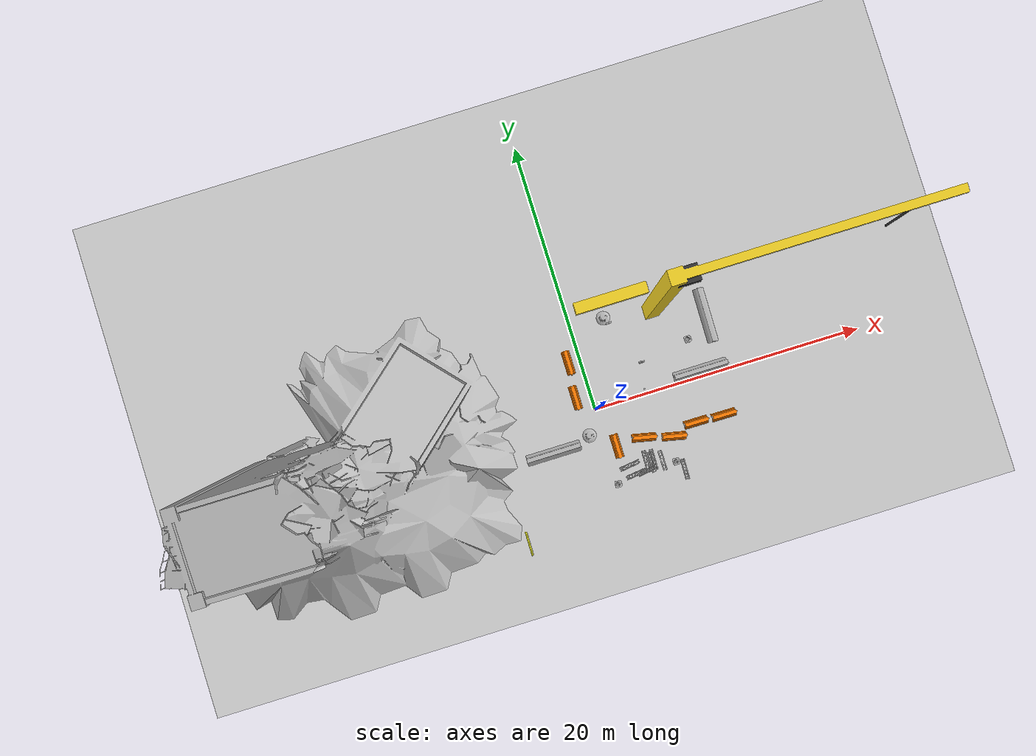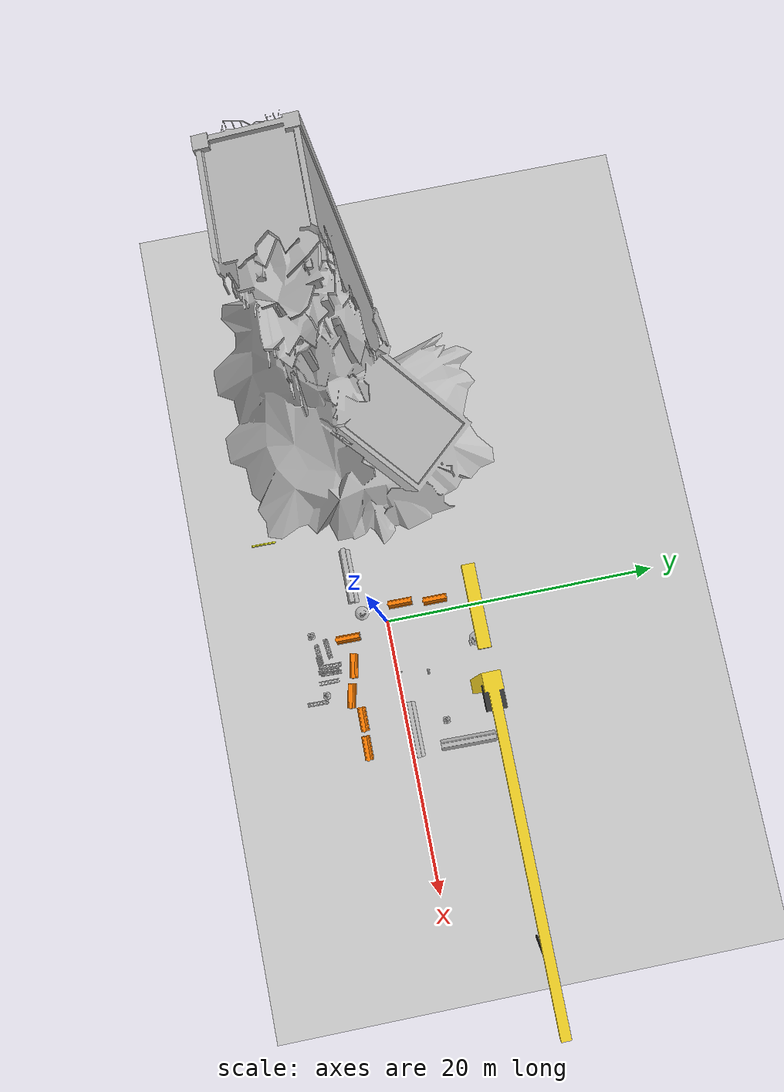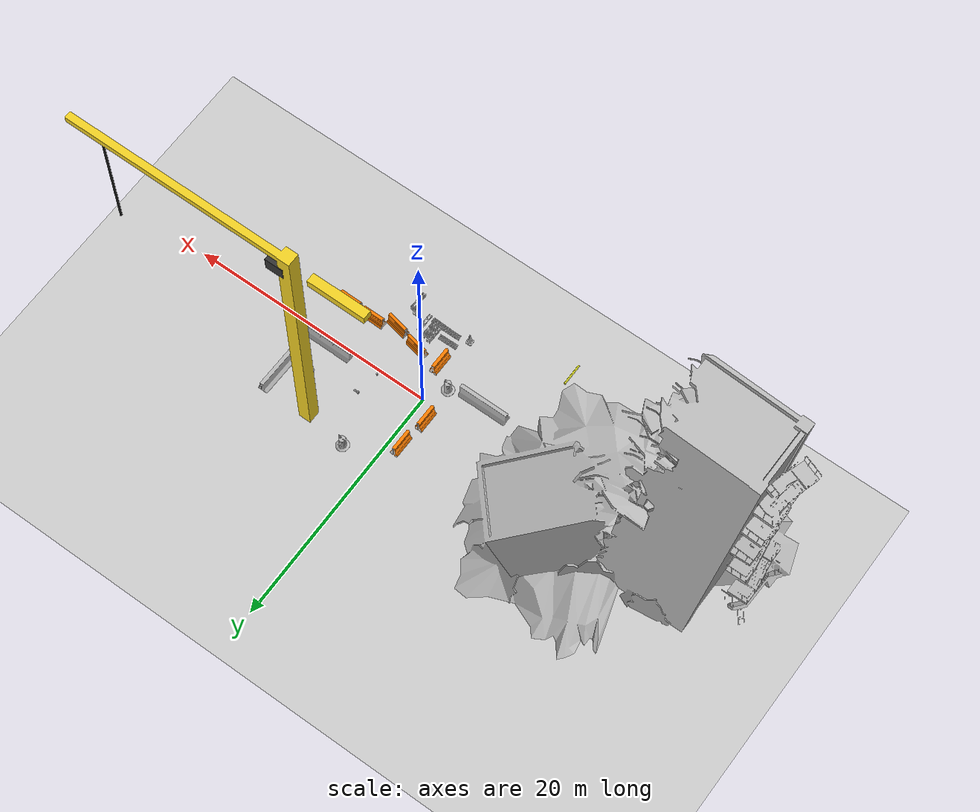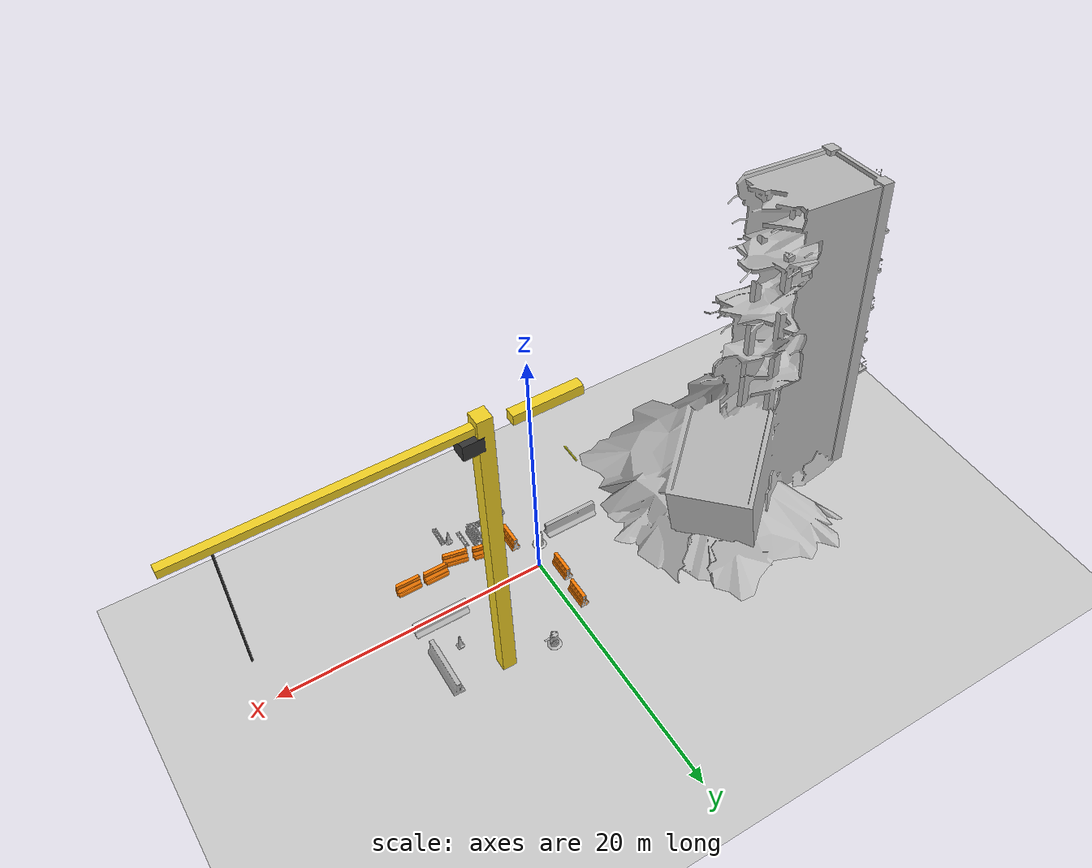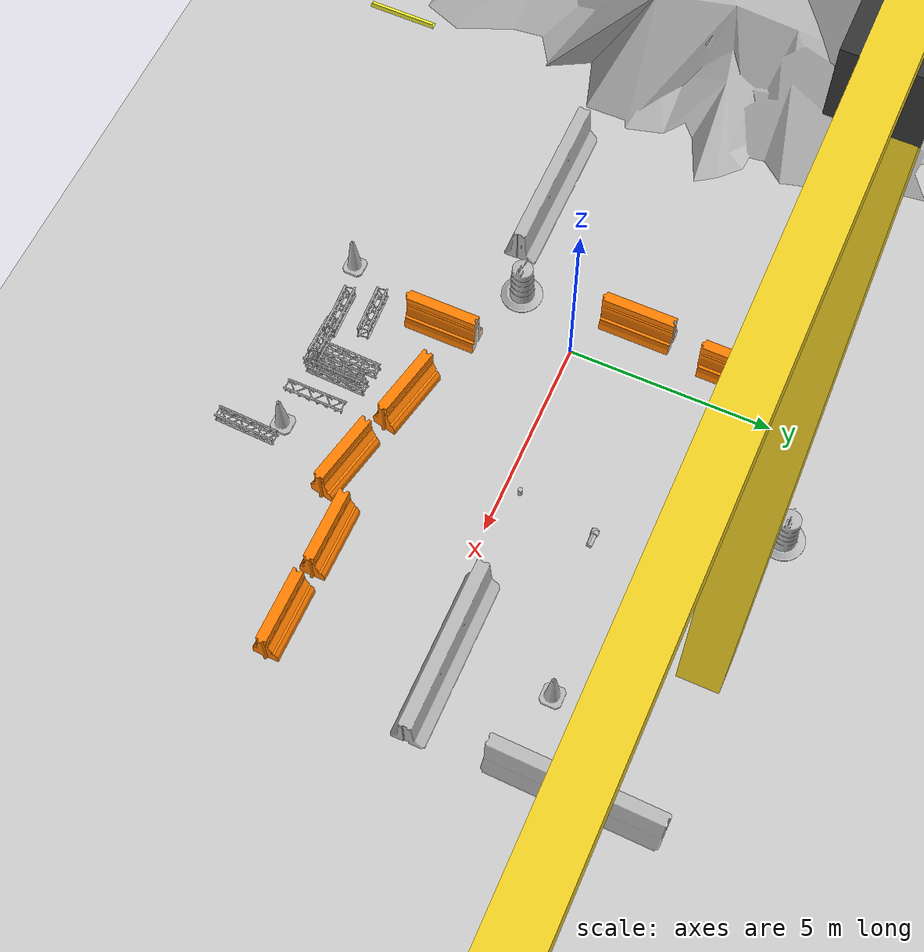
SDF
<sdf version="1.9">
 <world name="default">
  <light name="sun" type="directional">
   <pose>0 0 10 0 -0 0</pose>
   <diffuse>0.8 0.8 0.8 1</diffuse>
   <specular>0.1 0.1 0.1 1</specular>
   <attenuation>
    <range>1000</range>
    <constant>0.9</constant>
    <linear>0.01</linear>
    <quadratic>0.001</quadratic>
   </attenuation>
   <direction>-0.5 0.5 -1</direction>
  </light>
  <model name="ground_plane">
   <static>1</static>
   <link name="link">
    <collision name="collision">
     <geometry><plane><normal>0 0 1</normal><size>100 100</size></plane></geometry>
     <surface><friction><ode><mu>100</mu><mu2>50</mu2></ode></friction></surface>
    </collision>
    <visual name="visual">
     <cast_shadows>0</cast_shadows>
     <geometry><plane><normal>0 0 1</normal><size>100 100</size></plane></geometry>
     <material>
      <script><uri>file://media/materials/scripts/gazebo.material</uri><name>Gazebo/Grey</name></script>
     </material>
    </visual>
   </link>
  </model>
  <gravity>0 0 -9.8</gravity>
  <magnetic_field>6e-06 2.3e-05 -4.2e-05</magnetic_field>
  <atmosphere type="adiabatic"/>
  <physics name="default_physics" default="0" type="ode">
   <max_step_size>0.001</max_step_size>
   <real_time_factor>1</real_time_factor>
   <real_time_update_rate>1000</real_time_update_rate>
  </physics>
  <scene><ambient>0.4 0.4 0.4 1</ambient><background>0.7 0.7 0.7 1</background><shadows>1</shadows></scene>
  <spherical_coordinates>
   <surface_model>EARTH_WGS84</surface_model>
   <latitude_deg>0</latitude_deg>
   <longitude_deg>0</longitude_deg>
   <elevation>0</elevation>
   <heading_deg>0</heading_deg>
  </spherical_coordinates>
  <model name="collapsed_industrial">
   <static>1</static>
   <link name="link">
    <collision name="collision">
     <geometry><mesh><uri>model://collapsed_industrial/meshes/collapsed_industrial.dae</uri></mesh></geometry>
    </collision>
    <visual name="visual">
     <geometry><mesh><uri>model://collapsed_industrial/meshes/collapsed_industrial.dae</uri></mesh></geometry>
    </visual>
   </link>
   <pose>-18.086 -0.503995 0 0 -0 0</pose>
  </model>
  <model name="tower_crane">
   <static>1</static>
   <link name="link">
    <collision name="collision">
     <geometry><mesh><uri>model://tower_crane/meshes/tower_crane.dae</uri></mesh></geometry>
    </collision>
    <visual name="visual">
     <geometry><mesh><uri>model://tower_crane/meshes/tower_crane.dae</uri></mesh></geometry>
    </visual>
   </link>
   <pose>5.94197 5.66967 0 0 -0 0</pose>
  </model>
  <model name="Construction Barrel">
   <link name="link">
    <inertial>
     <pose>0 0 0.4 0 -0 0</pose>
     <mass>500</mass>
     <inertia><ixx>51.2096</ixx><iyy>51.2096</iyy><izz>25</izz><ixy>0</ixy><ixz>0</ixz><iyz>0</iyz></inertia>
    </inertial>
    <collision name="collision">
     <geometry><mesh><uri>model://construction_barrel/meshes/construction_barrel.dae</uri></mesh></geometry>
    </collision>
    <visual name="visual">
     <geometry><mesh><uri>model://construction_barrel/meshes/construction_barrel.dae</uri></mesh></geometry>
    </visual>
   </link>
   <pose>2.50817 6.21769 0 0 -0 0</pose>
  </model>
  <model name="drc_practice_yellow_parking_block">
   <static>1</static>
   <link name="link">
    <visual name="visual">
     <geometry><mesh><uri>model://drc_practice_yellow_parking_block/meshes/block.dae</uri></mesh></geometry>
    </visual>
    <collision name="collision">
     <geometry><mesh><uri>model://drc_practice_yellow_parking_block/meshes/block.dae</uri></mesh></geometry>
    </collision>
   </link>
   <pose>-7.46948 -7.91567 0 0 -0 0</pose>
  </model>
  <model name="drc_practice_organge_jersey_barrier">
   <static>1</static>
   <link name="link">
    <visual name="visual">
     <geometry>
      <mesh><uri>model://drc_practice_orange_jersey_barrier/meshes/jersey_barrier.dae</uri></mesh>
     </geometry>
    </visual>
    <collision name="collision">
     <geometry>
      <mesh><uri>model://drc_practice_orange_jersey_barrier/meshes/jersey_barrier.dae</uri></mesh>
     </geometry>
    </collision>
   </link>
   <pose>-0.887228 3.80913 0 0 -0 0</pose>
  </model>
  <model name="drc_practice_organge_jersey_barrier_clone">
   <static>1</static>
   <link name="link">
    <visual name="visual">
     <geometry>
      <mesh><uri>model://drc_practice_orange_jersey_barrier/meshes/jersey_barrier.dae</uri></mesh>
     </geometry>
    </visual>
    <collision name="collision">
     <geometry>
      <mesh><uri>model://drc_practice_orange_jersey_barrier/meshes/jersey_barrier.dae</uri></mesh>
     </geometry>
    </collision>
   </link>
   <pose>-1.14463 1.23631 0 0 -0 0</pose>
  </model>
  <model name="Construction Barrel_0">
   <link name="link">
    <inertial>
     <pose>0 0 0.4 0 -0 0</pose>
     <mass>500</mass>
     <inertia><ixx>51.2096</ixx><iyy>51.2096</iyy><izz>25</izz><ixy>0</ixy><ixz>0</ixz><iyz>0</iyz></inertia>
    </inertial>
    <collision name="collision">
     <geometry><mesh><uri>model://construction_barrel/meshes/construction_barrel.dae</uri></mesh></geometry>
    </collision>
    <visual name="visual">
     <geometry><mesh><uri>model://construction_barrel/meshes/construction_barrel.dae</uri></mesh></geometry>
    </visual>
   </link>
   <pose>-0.972125 -1.68594 0 0 -0 0</pose>
  </model>
  <model name="drc_practice_organge_jersey_barrier_clone_clone_clone">
   <static>1</static>
   <link name="link">
    <visual name="visual">
     <geometry>
      <mesh><uri>model://drc_practice_orange_jersey_barrier/meshes/jersey_barrier.dae</uri></mesh>
     </geometry>
    </visual>
    <collision name="collision">
     <geometry>
      <mesh><uri>model://drc_practice_orange_jersey_barrier/meshes/jersey_barrier.dae</uri></mesh>
     </geometry>
    </collision>
   </link>
   <pose>0.686413 -2.99473 0 0 -0 0</pose>
  </model>
  <model name="drc_practice_organge_jersey_barrier_clone_clone_clone_clone">
   <static>1</static>
   <link name="link">
    <visual name="visual">
     <geometry>
      <mesh><uri>model://drc_practice_orange_jersey_barrier/meshes/jersey_barrier.dae</uri></mesh>
     </geometry>
    </visual>
    <collision name="collision">
     <geometry>
      <mesh><uri>model://drc_practice_orange_jersey_barrier/meshes/jersey_barrier.dae</uri></mesh>
     </geometry>
    </collision>
   </link>
   <pose>2.74419 -2.98704 0 0 -0 1.36537</pose>
  </model>
  <model name="drc_practice_organge_jersey_barrier_clone_clone_clone_clone_0">
   <static>1</static>
   <link name="link">
    <visual name="visual">
     <geometry>
      <mesh><uri>model://drc_practice_orange_jersey_barrier/meshes/jersey_barrier.dae</uri></mesh>
     </geometry>
    </visual>
    <collision name="collision">
     <geometry>
      <mesh><uri>model://drc_practice_orange_jersey_barrier/meshes/jersey_barrier.dae</uri></mesh>
     </geometry>
    </collision>
   </link>
   <pose>4.8608 -3.54322 0 0 -0 1.36537</pose>
  </model>
  <model name="drc_practice_organge_jersey_barrier_clone_clone_clone_clone_0_clone">
   <static>1</static>
   <link name="link">
    <visual name="visual">
     <geometry>
      <mesh><uri>model://drc_practice_orange_jersey_barrier/meshes/jersey_barrier.dae</uri></mesh>
     </geometry>
    </visual>
    <collision name="collision">
     <geometry>
      <mesh><uri>model://drc_practice_orange_jersey_barrier/meshes/jersey_barrier.dae</uri></mesh>
     </geometry>
    </collision>
   </link>
   <pose>6.68027 -3.04316 0 0 -0 1.56758</pose>
  </model>
  <model name="drc_practice_organge_jersey_barrier_clone_clone_clone_clone_0_clone_0">
   <static>1</static>
   <link name="link">
    <visual name="visual">
     <geometry>
      <mesh><uri>model://drc_practice_orange_jersey_barrier/meshes/jersey_barrier.dae</uri></mesh>
     </geometry>
    </visual>
    <collision name="collision">
     <geometry>
      <mesh><uri>model://drc_practice_orange_jersey_barrier/meshes/jersey_barrier.dae</uri></mesh>
     </geometry>
    </collision>
   </link>
   <pose>8.77452 -3.12573 0 0 -0 1.56758</pose>
  </model>
  <model name="jersey_barrier">
   <static>1</static>
   <link name="link">
    <visual name="visual">
     <geometry><mesh><uri>model://jersey_barrier/meshes/jersey_barrier.dae</uri></mesh></geometry>
    </visual>
    <collision name="upright">
     <pose>0 0 0.5715 0 -0 0</pose>
     <geometry><box><size>4.06542 0.3063 1.143</size></box></geometry>
    </collision>
    <collision name="base">
     <pose>0 0 0.032258 0 -0 0</pose>
     <geometry><box><size>4.06542 0.8107 0.064516</size></box></geometry>
    </collision>
    <collision name="base2">
     <pose>0 0 0.1 0 -0 0</pose>
     <geometry><box><size>4.06542 0.65 0.1</size></box></geometry>
    </collision>
    <collision name="base3">
     <pose>0 0 0.2 0 -0 0</pose>
     <geometry><box><size>4.06542 0.5 0.1</size></box></geometry>
    </collision>
    <collision name="left-angle">
     <pose>0 -0.224 0.2401 0.9 -0 0</pose>
     <geometry><box><size>4.06542 0.5 0.064516</size></box></geometry>
    </collision>
    <collision name="right-angle">
     <pose>0 0.224 0.2401 -0.9 0 0</pose>
     <geometry><box><size>4.06542 0.5 0.064516</size></box></geometry>
    </collision>
   </link>
   <pose>8.13977 0.48179 0 0 -0 0</pose>
  </model>
  <model name="jersey_barrier_clone">
   <static>1</static>
   <link name="link">
    <visual name="visual">
     <geometry><mesh><uri>model://jersey_barrier/meshes/jersey_barrier.dae</uri></mesh></geometry>
    </visual>
    <collision name="upright">
     <pose>0 0 0.5715 0 -0 0</pose>
     <geometry><box><size>4.06542 0.3063 1.143</size></box></geometry>
    </collision>
    <collision name="base">
     <pose>0 0 0.032258 0 -0 0</pose>
     <geometry><box><size>4.06542 0.8107 0.064516</size></box></geometry>
    </collision>
    <collision name="base2">
     <pose>0 0 0.1 0 -0 0</pose>
     <geometry><box><size>4.06542 0.65 0.1</size></box></geometry>
    </collision>
    <collision name="base3">
     <pose>0 0 0.2 0 -0 0</pose>
     <geometry><box><size>4.06542 0.5 0.1</size></box></geometry>
    </collision>
    <collision name="left-angle">
     <pose>0 -0.224 0.2401 0.9 -0 0</pose>
     <geometry><box><size>4.06542 0.5 0.064516</size></box></geometry>
    </collision>
    <collision name="right-angle">
     <pose>0 0.224 0.2401 -0.9 0 0</pose>
     <geometry><box><size>4.06542 0.5 0.064516</size></box></geometry>
    </collision>
   </link>
   <pose>9.70602 4.18121 0 0 -0 1.55298</pose>
  </model>
  <model name="beer">
   <link name="link">
    <pose>0 0 0.115 0 -0 0</pose>
    <inertial>
     <mass>0.39</mass>
     <inertia><ixx>0.00058</ixx><ixy>0</ixy><ixz>0</ixz><iyy>0.00058</iyy><iyz>0</iyz><izz>0.00019</izz></inertia>
    </inertial>
    <collision name="collision">
     <geometry><cylinder><radius>0.055</radius><length>0.23</length></cylinder></geometry>
    </collision>
    <visual name="visual">
     <geometry><cylinder><radius>0.055</radius><length>0.23</length></cylinder></geometry>
     <material>
      <script>
       <uri>model://beer/materials/scripts</uri>
       <uri>model://beer/materials/textures</uri>
       <name>Beer/Diffuse</name>
      </script>
     </material>
    </visual>
   </link>
   <pose>3.8547 0.37336 0 0 -0 0</pose>
  </model>
  <model name="standpipe">
   <static>1</static>
   <link name="standpipe">
    <pose>0 0 0.1 0 1.57078 0</pose>
    <collision name="collision_stopper">
     <pose>0 0 0.22 0 -0 0</pose>
     <geometry><cylinder><radius>0.069</radius><length>0.1</length></cylinder></geometry>
     <surface><friction><ode><mu>0.5</mu><mu2>0.5</mu2></ode></friction></surface>
    </collision>
    <collision name="collision">
     <pose>0 0 0.15 0 -0 0</pose>
     <geometry><mesh><uri>model://standpipe/meshes/standpipe.dae</uri></mesh></geometry>
     <surface><friction><ode><mu>0.5</mu><mu2>0.5</mu2></ode></friction></surface>
    </collision>
    <visual name="visual">
     <pose>0 0 0.15 0 -0 0</pose>
     <geometry><mesh><uri>model://standpipe/meshes/standpipe.dae</uri></mesh></geometry>
    </visual>
   </link>
   <pose>3.91415 2.30422 0 0 -0 0</pose>
  </model>
  <model name="standpipe_clone">
   <static>1</static>
   <link name="standpipe">
    <pose>0 0 0.1 0 1.57078 0</pose>
    <collision name="collision_stopper">
     <pose>0 0 0.22 0 -0 0</pose>
     <geometry><cylinder><radius>0.069</radius><length>0.1</length></cylinder></geometry>
     <surface><friction><ode><mu>0.5</mu><mu2>0.5</mu2></ode></friction></surface>
    </collision>
    <collision name="collision">
     <pose>0 0 0.15 0 -0 0</pose>
     <geometry><mesh><uri>model://standpipe/meshes/standpipe.dae</uri></mesh></geometry>
     <surface><friction><ode><mu>0.5</mu><mu2>0.5</mu2></ode></friction></surface>
    </collision>
    <visual name="visual">
     <pose>0 0 0.15 0 -0 0</pose>
     <geometry><mesh><uri>model://standpipe/meshes/standpipe.dae</uri></mesh></geometry>
    </visual>
   </link>
   <pose>2.44659 5.74462 0 0 -0 0</pose>
  </model>
  <model name="jersey_barrier_0">
   <static>1</static>
   <link name="link">
    <visual name="visual">
     <geometry><mesh><uri>model://jersey_barrier/meshes/jersey_barrier.dae</uri></mesh></geometry>
    </visual>
    <collision name="upright">
     <pose>0 0 0.5715 0 -0 0</pose>
     <geometry><box><size>4.06542 0.3063 1.143</size></box></geometry>
    </collision>
    <collision name="base">
     <pose>0 0 0.032258 0 -0 0</pose>
     <geometry><box><size>4.06542 0.8107 0.064516</size></box></geometry>
    </collision>
    <collision name="base2">
     <pose>0 0 0.1 0 -0 0</pose>
     <geometry><box><size>4.06542 0.65 0.1</size></box></geometry>
    </collision>
    <collision name="base3">
     <pose>0 0 0.2 0 -0 0</pose>
     <geometry><box><size>4.06542 0.5 0.1</size></box></geometry>
    </collision>
    <collision name="left-angle">
     <pose>0 -0.224 0.2401 0.9 -0 0</pose>
     <geometry><box><size>4.06542 0.5 0.064516</size></box></geometry>
    </collision>
    <collision name="right-angle">
     <pose>0 0.224 0.2401 -0.9 0 0</pose>
     <geometry><box><size>4.06542 0.5 0.064516</size></box></geometry>
    </collision>
   </link>
   <pose>-3.83767 -2.1374 0 0 -0 0</pose>
  </model>
  <model name="truss">
   <link name="link">
    <inertial>
     <mass>20.7307</mass>
     <inertia>
      <ixx>4.7978</ixx>
      <ixy>0</ixy>
      <ixz>0</ixz>
      <iyy>0.4699</iyy>
      <iyz>-0.002</iyz>
      <izz>4.7978</izz>
     </inertia>
    </inertial>
    <collision name="collision">
     <geometry><mesh><uri>model://drc_practice_truss/meshes/truss.dae</uri></mesh></geometry>
     <surface>
      <bounce><restitution_coefficient>0</restitution_coefficient><threshold>100000</threshold></bounce>
      <friction><ode><mu>10</mu><mu2>10</mu2></ode></friction>
     </surface>
    </collision>
    <visual name="visual">
     <geometry><mesh><uri>model://drc_practice_truss/meshes/truss.dae</uri></mesh></geometry>
    </visual>
   </link>
   <pose>3.54652 -4.98598 0 0 -0 0</pose>
  </model>
  <model name="truss_clone">
   <link name="link">
    <inertial>
     <mass>20.7307</mass>
     <inertia>
      <ixx>4.7978</ixx>
      <ixy>0</ixy>
      <ixz>0</ixz>
      <iyy>0.4699</iyy>
      <iyz>-0.002</iyz>
      <izz>4.7978</izz>
     </inertia>
    </inertial>
    <collision name="collision">
     <geometry><mesh><uri>model://drc_practice_truss/meshes/truss.dae</uri></mesh></geometry>
     <surface>
      <bounce><restitution_coefficient>0</restitution_coefficient><threshold>100000</threshold></bounce>
      <friction><ode><mu>10</mu><mu2>10</mu2></ode></friction>
     </surface>
    </collision>
    <visual name="visual">
     <geometry><mesh><uri>model://drc_practice_truss/meshes/truss.dae</uri></mesh></geometry>
    </visual>
   </link>
   <pose>2.39881 -4.64902 0.193305 0 0 -0.027112</pose>
  </model>
  <model name="truss_clone_0">
   <link name="link">
    <inertial>
     <mass>20.7307</mass>
     <inertia>
      <ixx>4.7978</ixx>
      <ixy>0</ixy>
      <ixz>0</ixz>
      <iyy>0.4699</iyy>
      <iyz>-0.002</iyz>
      <izz>4.7978</izz>
     </inertia>
    </inertial>
    <collision name="collision">
     <geometry><mesh><uri>model://drc_practice_truss/meshes/truss.dae</uri></mesh></geometry>
     <surface>
      <bounce><restitution_coefficient>0</restitution_coefficient><threshold>100000</threshold></bounce>
      <friction><ode><mu>10</mu><mu2>10</mu2></ode></friction>
     </surface>
    </collision>
    <visual name="visual">
     <geometry><mesh><uri>model://drc_practice_truss/meshes/truss.dae</uri></mesh></geometry>
    </visual>
   </link>
   <pose>2.76004 -4.86415 0.193305 0 0 -0.027112</pose>
  </model>
  <model name="truss_clone_1">
   <link name="link">
    <inertial>
     <mass>20.7307</mass>
     <inertia>
      <ixx>4.7978</ixx>
      <ixy>0</ixy>
      <ixz>0</ixz>
      <iyy>0.4699</iyy>
      <iyz>-0.002</iyz>
      <izz>4.7978</izz>
     </inertia>
    </inertial>
    <collision name="collision">
     <geometry><mesh><uri>model://drc_practice_truss/meshes/truss.dae</uri></mesh></geometry>
     <surface>
      <bounce><restitution_coefficient>0</restitution_coefficient><threshold>100000</threshold></bounce>
      <friction><ode><mu>10</mu><mu2>10</mu2></ode></friction>
     </surface>
    </collision>
    <visual name="visual">
     <geometry><mesh><uri>model://drc_practice_truss/meshes/truss.dae</uri></mesh></geometry>
    </visual>
   </link>
   <pose>2.92461 -4.71225 0.193306 0 -2e-06 -0.026766</pose>
  </model>
  <model name="truss_clone_2">
   <link name="link">
    <inertial>
     <mass>20.7307</mass>
     <inertia>
      <ixx>4.7978</ixx>
      <ixy>0</ixy>
      <ixz>0</ixz>
      <iyy>0.4699</iyy>
      <iyz>-0.002</iyz>
      <izz>4.7978</izz>
     </inertia>
    </inertial>
    <collision name="collision">
     <geometry><mesh><uri>model://drc_practice_truss/meshes/truss.dae</uri></mesh></geometry>
     <surface>
      <bounce><restitution_coefficient>0</restitution_coefficient><threshold>100000</threshold></bounce>
      <friction><ode><mu>10</mu><mu2>10</mu2></ode></friction>
     </surface>
    </collision>
    <visual name="visual">
     <geometry><mesh><uri>model://drc_practice_truss/meshes/truss.dae</uri></mesh></geometry>
    </visual>
   </link>
   <pose>4.9188 -6.05844 0.193306 0 -2e-06 -0.026766</pose>
  </model>
  <model name="truss_clone_2_clone">
   <link name="link">
    <inertial>
     <mass>20.7307</mass>
     <inertia>
      <ixx>4.7978</ixx>
      <ixy>0</ixy>
      <ixz>0</ixz>
      <iyy>0.4699</iyy>
      <iyz>-0.002</iyz>
      <izz>4.7978</izz>
     </inertia>
    </inertial>
    <collision name="collision">
     <geometry><mesh><uri>model://drc_practice_truss/meshes/truss.dae</uri></mesh></geometry>
     <surface>
      <bounce><restitution_coefficient>0</restitution_coefficient><threshold>100000</threshold></bounce>
      <friction><ode><mu>10</mu><mu2>10</mu2></ode></friction>
     </surface>
    </collision>
    <visual name="visual">
     <geometry><mesh><uri>model://drc_practice_truss/meshes/truss.dae</uri></mesh></geometry>
    </visual>
   </link>
   <pose>2.31858 -5.35293 0.534729 -0.483865 -0.010122 1.73571</pose>
  </model>
  <model name="truss_clone_2_clone_clone">
   <link name="link">
    <inertial>
     <mass>20.7307</mass>
     <inertia>
      <ixx>4.7978</ixx>
      <ixy>0</ixy>
      <ixz>0</ixz>
      <iyy>0.4699</iyy>
      <iyz>-0.002</iyz>
      <izz>4.7978</izz>
     </inertia>
    </inertial>
    <collision name="collision">
     <geometry><mesh><uri>model://drc_practice_truss/meshes/truss.dae</uri></mesh></geometry>
     <surface>
      <bounce><restitution_coefficient>0</restitution_coefficient><threshold>100000</threshold></bounce>
      <friction><ode><mu>10</mu><mu2>10</mu2></ode></friction>
     </surface>
    </collision>
    <visual name="visual">
     <geometry><mesh><uri>model://drc_practice_truss/meshes/truss.dae</uri></mesh></geometry>
    </visual>
   </link>
   <pose>1.15513 -4.62277 0.417303 -0.296503 -0.058357 1.72503</pose>
  </model>
  <model name="truss_clone_2_clone_clone_0">
   <link name="link">
    <inertial>
     <mass>20.7307</mass>
     <inertia>
      <ixx>4.7978</ixx>
      <ixy>0</ixy>
      <ixz>0</ixz>
      <iyy>0.4699</iyy>
      <iyz>-0.002</iyz>
      <izz>4.7978</izz>
     </inertia>
    </inertial>
    <collision name="collision">
     <geometry><mesh><uri>model://drc_practice_truss/meshes/truss.dae</uri></mesh></geometry>
     <surface>
      <bounce><restitution_coefficient>0</restitution_coefficient><threshold>100000</threshold></bounce>
      <friction><ode><mu>10</mu><mu2>10</mu2></ode></friction>
     </surface>
    </collision>
    <visual name="visual">
     <geometry><mesh><uri>model://drc_practice_truss/meshes/truss.dae</uri></mesh></geometry>
    </visual>
   </link>
   <pose>1.43581 -5.3551 0.415147 -0.293107 -0.060256 1.71571</pose>
  </model>
  <model name="Construction Cone_clone_clone_clone">
   <link name="link">
    <collision name="collision">
     <geometry>
      <mesh><scale>10 10 10</scale><uri>model://construction_cone/meshes/construction_cone.dae</uri></mesh>
     </geometry>
    </collision>
    <visual name="visual">
     <geometry>
      <mesh><scale>10 10 10</scale><uri>model://construction_cone/meshes/construction_cone.dae</uri></mesh>
     </geometry>
    </visual>
    <inertial>
     <inertia><ixx>1</ixx><ixy>0</ixy><ixz>0</ixz><iyy>1</iyy><iyz>0</iyz><izz>1</izz></inertia>
     <mass>1</mass>
    </inertial>
   </link>
   <pose>-0.010236 -5.67665 0.04999 0 -0 0</pose>
  </model>
  <model name="standpipe_clone_0">
   <static>1</static>
   <link name="standpipe">
    <pose>0 0 0.1 0 1.57078 0</pose>
    <collision name="collision_stopper">
     <pose>0 0 0.22 0 -0 0</pose>
     <geometry><cylinder><radius>0.069</radius><length>0.1</length></cylinder></geometry>
     <surface><friction><ode><mu>0.5</mu><mu2>0.5</mu2></ode></friction></surface>
    </collision>
    <collision name="collision">
     <pose>0 0 0.15 0 -0 0</pose>
     <geometry><mesh><uri>model://standpipe/meshes/standpipe.dae</uri></mesh></geometry>
     <surface><friction><ode><mu>0.5</mu><mu2>0.5</mu2></ode></friction></surface>
    </collision>
    <visual name="visual">
     <pose>0 0 0.15 0 -0 0</pose>
     <geometry><mesh><uri>model://standpipe/meshes/standpipe.dae</uri></mesh></geometry>
    </visual>
   </link>
   <pose>3.87778 2.30096 0 0 -0 0</pose>
  </model>
  <model name="Construction Cone_clone_clone_clone_clone">
   <link name="link">
    <collision name="collision">
     <geometry>
      <mesh><scale>10 10 10</scale><uri>model://construction_cone/meshes/construction_cone.dae</uri></mesh>
     </geometry>
    </collision>
    <visual name="visual">
     <geometry>
      <mesh><scale>10 10 10</scale><uri>model://construction_cone/meshes/construction_cone.dae</uri></mesh>
     </geometry>
    </visual>
    <inertial>
     <inertia><ixx>1</ixx><ixy>0</ixy><ixz>0</ixz><iyy>1</iyy><iyz>0</iyz><izz>1</izz></inertia>
     <mass>1</mass>
    </inertial>
   </link>
   <pose>4.49108 -5.34208 0.049991 0 -2e-06 0</pose>
  </model>
  <model name="Construction Cone">
   <link name="link">
    <collision name="collision">
     <geometry>
      <mesh><scale>10 10 10</scale><uri>model://construction_cone/meshes/construction_cone.dae</uri></mesh>
     </geometry>
    </collision>
    <visual name="visual">
     <geometry>
      <mesh><scale>10 10 10</scale><uri>model://construction_cone/meshes/construction_cone.dae</uri></mesh>
     </geometry>
    </visual>
    <inertial>
     <inertia><ixx>1</ixx><ixy>0</ixy><ixz>0</ixz><iyy>1</iyy><iyz>0</iyz><izz>1</izz></inertia>
     <mass>1</mass>
    </inertial>
   </link>
   <pose>7.95172 2.91478 0 0 -0 0</pose>
  </model>
 </world>
</sdf>
